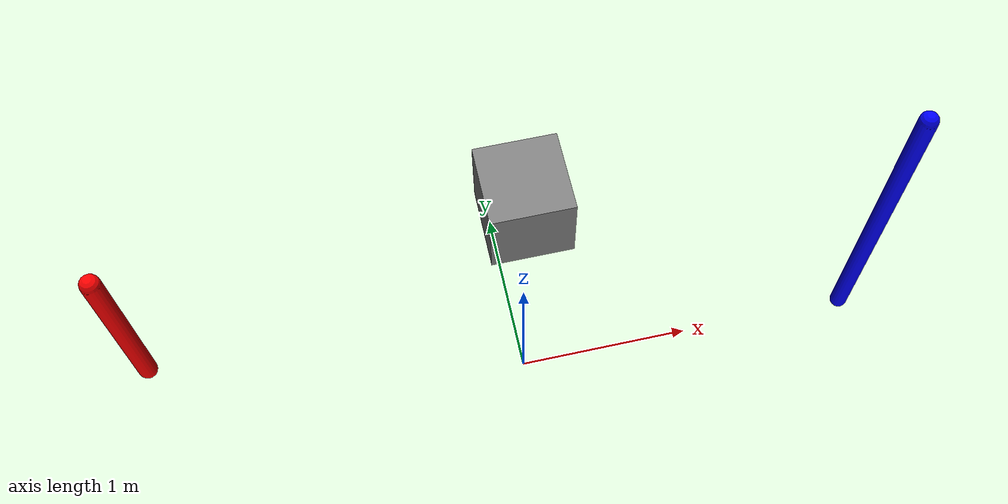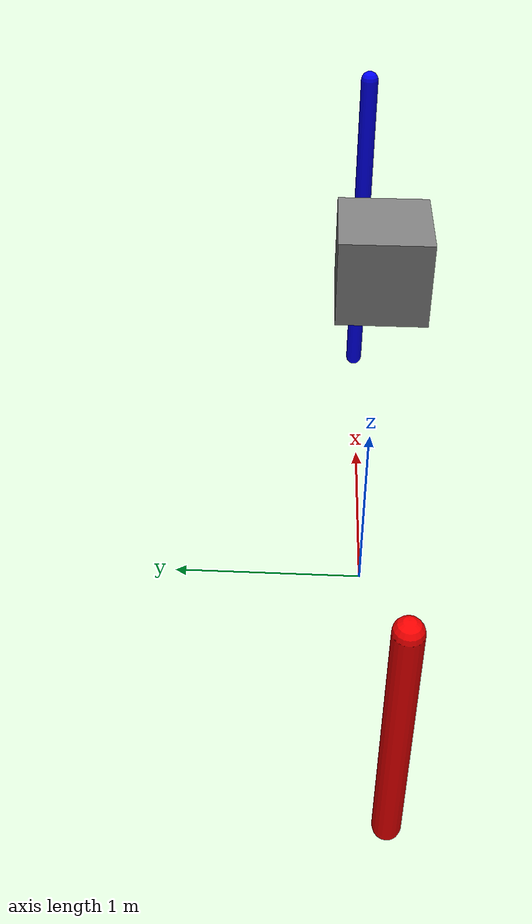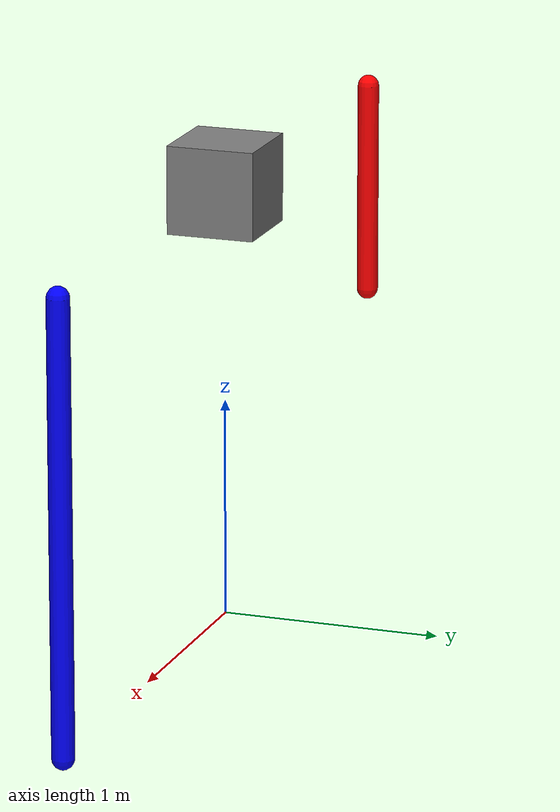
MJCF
<mujoco>
  <option gravity="0 0 -9.81" />
  <worldbody>
    <body name="object_3" pos="0 0 2">
      <geom type="box" size="0.2 0.2 0.2" rgba="0.5 0.5 0.5 1" />
    </body>
    <body name="object_1" pos="-2 0 2">
      <geom type="capsule" fromto="0 0 0 0 0 -1" size="0.05" rgba="1 0 0 1" />
      <joint name="object_1_joint" type="hinge" axis="0 1 0" />
    </body>
    <body name="object_2" pos="2 0 2">
      <geom type="capsule" fromto="0 0 0 0 0 -2" size="0.05" rgba="0 0 1 1" />
      <joint name="object_2_joint" type="hinge" axis="0 1 0" />
    </body>
  </worldbody>
<joint name="joint_object_3_object_1" type="revolute" body1="object_3" body2="object_1" /><joint name="joint_object_3_object_2" type="revolute" body1="object_3" body2="object_2" /></mujoco>
